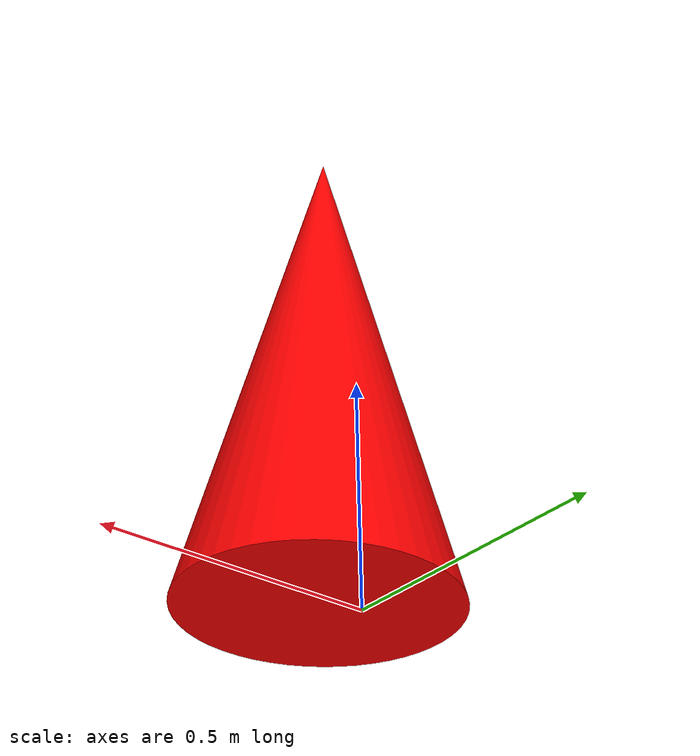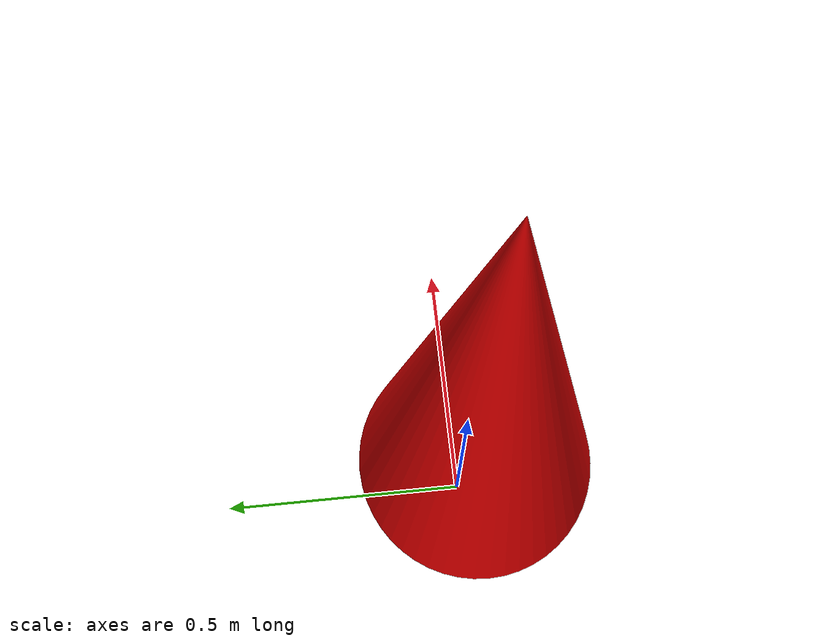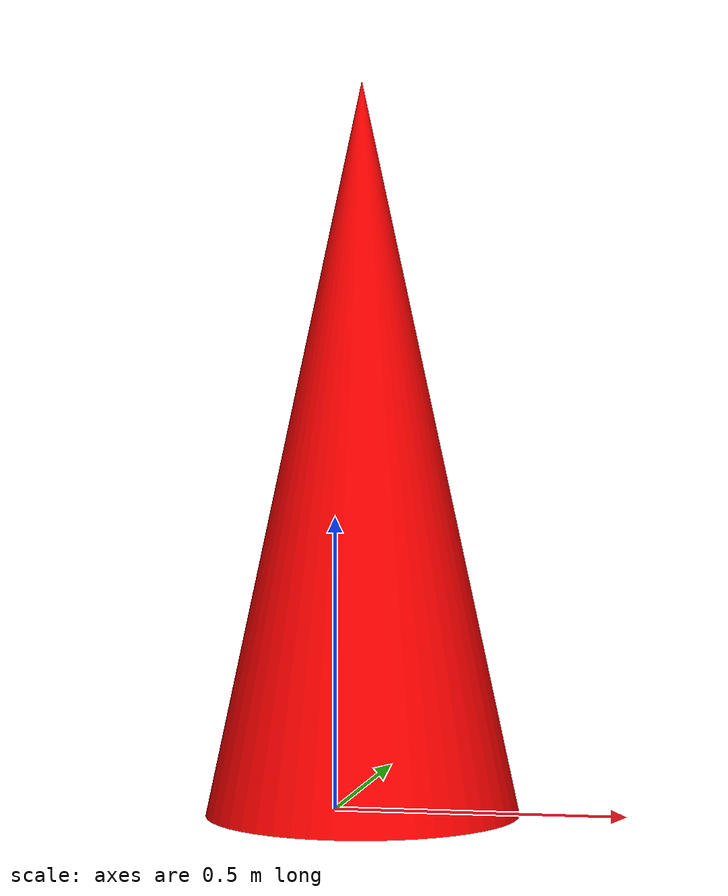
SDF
<?xml version="1.0"?>
<sdf version="1.9">
  <model name="cone_red">
    <static>true</static>
    <link name="link">
      <visual name="visual">
        <geometry>
          <mesh>
            <uri>model://cone_red/meshes/cone.stl</uri>
            <scale>0.019 0.019 0.019</scale> <!--  0.005 is too small 0.05 is still too large get the best scale and use it here -->
          </mesh>
        </geometry>
        <material>
          <ambient>1 0 0 1</ambient>
          <diffuse>1 0 0 1</diffuse>
        </material>
      </visual>
      <collision name="collision">
        <geometry>
          <mesh>
            <uri>model://cone_red/meshes/cone.stl</uri>
          </mesh>
        </geometry>
      </collision>
    </link>
  </model>
</sdf>
